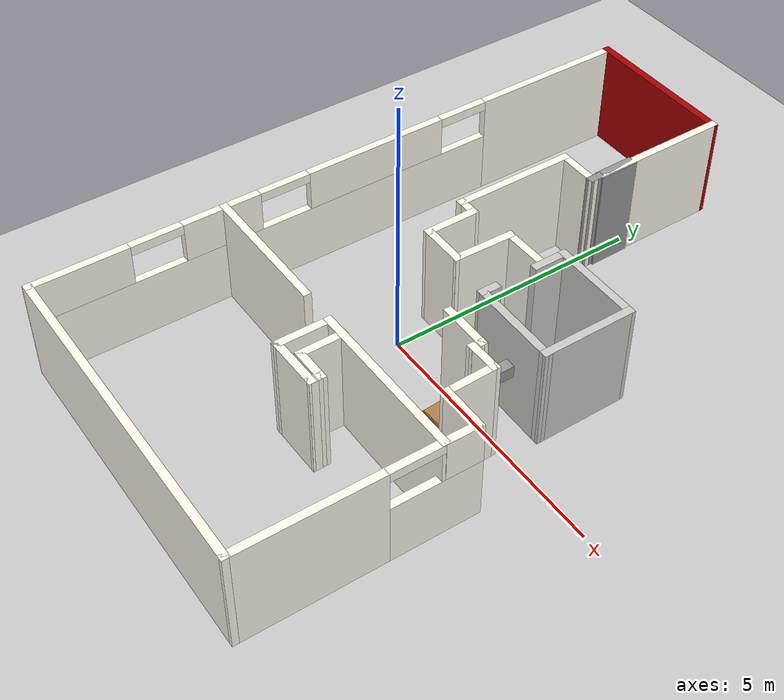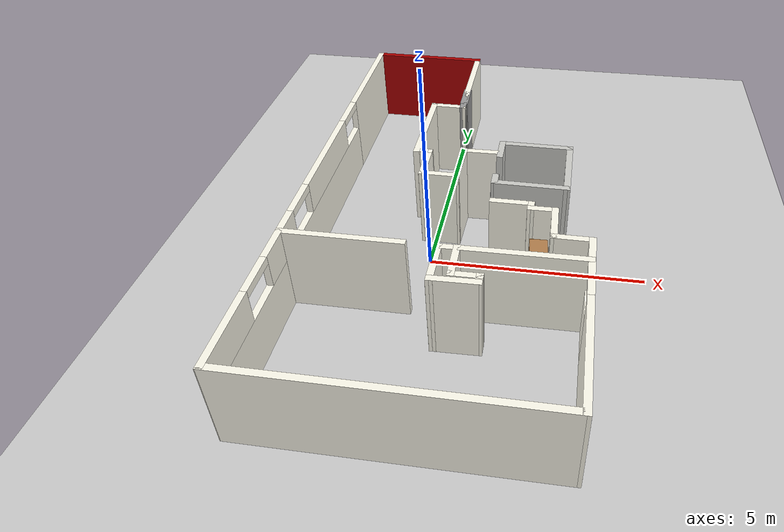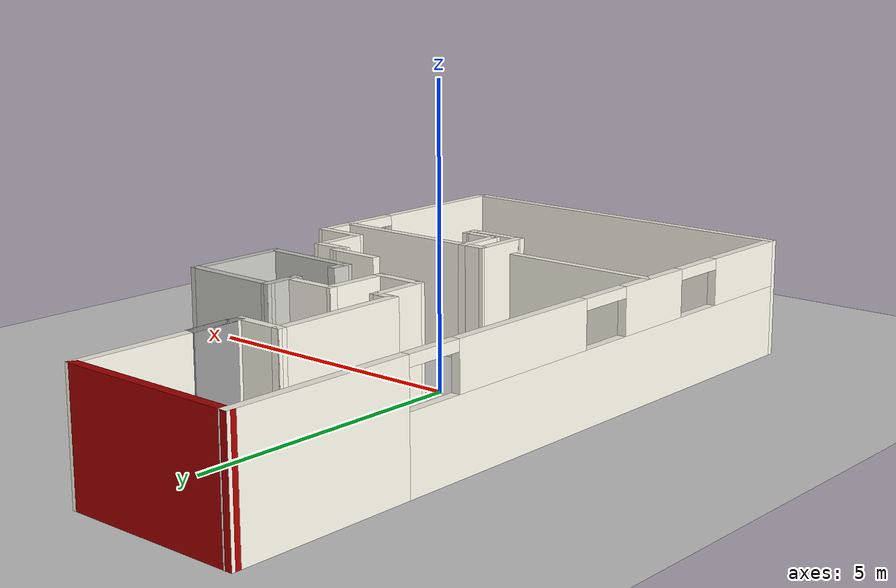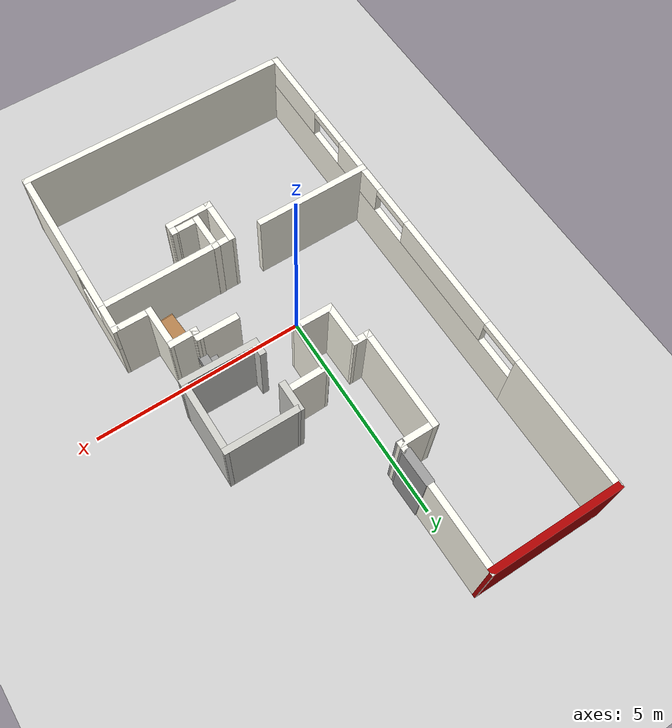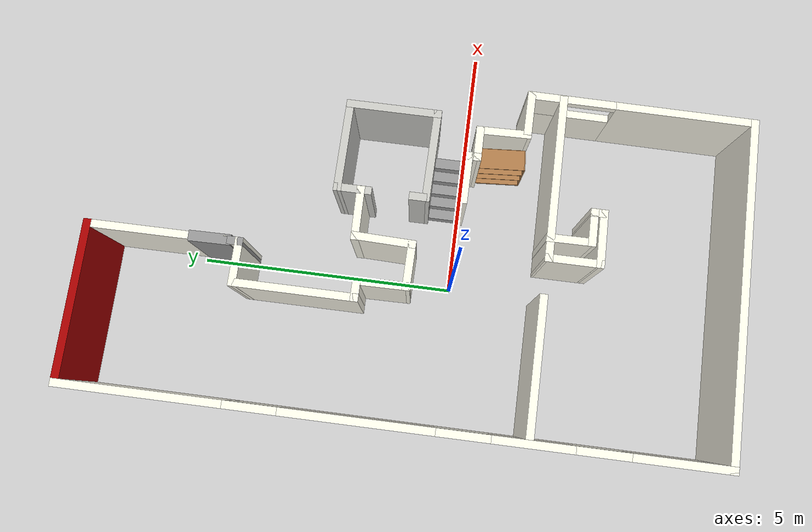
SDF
<sdf version="1.6">
 <world name="default">
  <model name="ground_plane">
   <static>1</static>
   <link name="link">
    <collision name="collision">
     <geometry><plane><normal>0 0 1</normal><size>100 100</size></plane></geometry>
     <surface>
      <contact><collide_bitmask>65535</collide_bitmask></contact>
      <friction><ode><mu>100</mu><mu2>50</mu2></ode></friction>
     </surface>
    </collision>
    <visual name="visual">
     <cast_shadows>0</cast_shadows>
     <geometry><plane><normal>0 0 1</normal><size>100 100</size></plane></geometry>
     <material>
      <script><uri>file://media/materials/scripts/gazebo.material</uri><name>Gazebo/Grey</name></script>
     </material>
    </visual>
   </link>
  </model>
  <model name="Apartment">
   <pose>0.435698 0.75844 0 0 -0 0</pose>
   <link name="Door_0">
    <collision name="Door_0_Collision">
     <geometry><box><size>0.792 0.2 2</size></box></geometry>
     <pose>0 0 1 0 -0 0</pose>
    </collision>
    <visual name="Door_0_Visual">
     <pose>0 0 1 0 -0 0</pose>
     <geometry><box><size>0.792 0.2 2</size></box></geometry>
     <material>
      <script><uri>file://media/materials/scripts/gazebo.material</uri><name>Gazebo/Grey</name></script>
     </material>
    </visual>
    <pose>-0.272982 3.76942 0 0 -0 1.58229</pose>
   </link>
   <link name="Stairs_1">
    <visual name="Stairs_1_Visual_0">
     <pose>1.08577 -0.451347 0.12 0 -0 1.5708</pose>
     <geometry><box><size>0.6 0.2 0.24</size></box></geometry>
     <material>
      <script><uri>file://media/materials/scripts/gazebo.material</uri><name>Gazebo/Grey</name></script>
      <ambient>1 1 1 1</ambient>
     </material>
     <meta><layer>0</layer></meta>
    </visual>
    <collision name="Stairs_1_Collision_0">
     <geometry><box><size>0.6 0.2 0.24</size></box></geometry>
     <pose>1.08577 -0.451347 0.12 0 -0 1.5708</pose>
    </collision>
    <visual name="Stairs_1_Visual_1">
     <pose>1.28577 -0.451347 0.36 0 -0 1.5708</pose>
     <geometry><box><size>0.6 0.2 0.24</size></box></geometry>
     <material>
      <script><uri>file://media/materials/scripts/gazebo.material</uri><name>Gazebo/Grey</name></script>
      <ambient>1 1 1 1</ambient>
     </material>
     <meta><layer>0</layer></meta>
    </visual>
    <collision name="Stairs_1_Collision_1">
     <geometry><box><size>0.6 0.2 0.24</size></box></geometry>
     <pose>1.28577 -0.451347 0.36 0 -0 1.5708</pose>
    </collision>
    <visual name="Stairs_1_Visual_2">
     <pose>1.48577 -0.451347 0.6 0 -0 1.5708</pose>
     <geometry><box><size>0.6 0.2 0.24</size></box></geometry>
     <material>
      <script><uri>file://media/materials/scripts/gazebo.material</uri><name>Gazebo/Grey</name></script>
      <ambient>1 1 1 1</ambient>
     </material>
     <meta><layer>0</layer></meta>
    </visual>
    <collision name="Stairs_1_Collision_2">
     <geometry><box><size>0.6 0.2 0.24</size></box></geometry>
     <pose>1.48577 -0.451347 0.6 0 -0 1.5708</pose>
    </collision>
    <visual name="Stairs_1_Visual_3">
     <pose>1.68577 -0.451347 0.84 0 -0 1.5708</pose>
     <geometry><box><size>0.6 0.2 0.24</size></box></geometry>
     <material>
      <script><uri>file://media/materials/scripts/gazebo.material</uri><name>Gazebo/Grey</name></script>
      <ambient>1 1 1 1</ambient>
     </material>
     <meta><layer>0</layer></meta>
    </visual>
    <collision name="Stairs_1_Collision_3">
     <geometry><box><size>0.6 0.2 0.24</size></box></geometry>
     <pose>1.68577 -0.451347 0.84 0 -0 1.5708</pose>
    </collision>
    <visual name="Stairs_1_Visual_4">
     <pose>1.88577 -0.451347 1.08 0 -0 1.5708</pose>
     <geometry><box><size>0.6 0.2 0.24</size></box></geometry>
     <material>
      <script><uri>file://media/materials/scripts/gazebo.material</uri><name>Gazebo/Grey</name></script>
      <ambient>1 1 1 1</ambient>
     </material>
     <meta><layer>0</layer></meta>
    </visual>
    <collision name="Stairs_1_Collision_4">
     <geometry><box><size>0.6 0.2 0.24</size></box></geometry>
     <pose>1.88577 -0.451347 1.08 0 -0 1.5708</pose>
    </collision>
   </link>
   <link name="Wall_0">
    <collision name="Wall_0_Collision">
     <geometry><box><size>2.97893 0.15 2</size></box></geometry>
     <pose>0 0 1 0 -0 0</pose>
    </collision>
    <visual name="Wall_0_Visual">
     <pose>0 0 1 0 -0 0</pose>
     <geometry><box><size>2.97893 0.15 2</size></box></geometry>
     <material>
      <script><uri>file://media/materials/scripts/gazebo.material</uri><name>Gazebo/Grey</name></script>
      <ambient>1 0.988235 0.929412 1</ambient>
     </material>
     <meta><layer>0</layer></meta>
    </visual>
    <pose>-0.276026 4.64956 0 0 -0 1.57256</pose>
   </link>
   <link name="Wall_1">
    <collision name="Wall_1_Collision">
     <geometry><box><size>3.08816 0.15 2</size></box></geometry>
     <pose>0 0 1 0 -0 0</pose>
    </collision>
    <visual name="Wall_1_Visual">
     <pose>0 0 1 0 -0 0</pose>
     <geometry><box><size>3.08816 0.15 2</size></box></geometry>
     <material>
      <script><uri>file://media/materials/scripts/gazebo.material</uri><name>Gazebo/Grey</name></script>
      <ambient>0.666667 0 0 1</ambient>
     </material>
     <meta><layer>0</layer></meta>
    </visual>
    <pose>-1.74753 6.07156 0 0 -0 3.13649</pose>
   </link>
   <link name="Wall_10">
    <collision name="Wall_10_Collision">
     <geometry><box><size>0.311078 0.15 2</size></box></geometry>
     <pose>0 0 1 0 -0 0</pose>
    </collision>
    <visual name="Wall_10_Visual">
     <pose>0 0 1 0 -0 0</pose>
     <geometry><box><size>0.311078 0.15 2</size></box></geometry>
     <material>
      <script><uri>file://media/materials/scripts/gazebo.material</uri><name>Gazebo/Grey</name></script>
      <ambient>1 0.988235 0.929412 1</ambient>
     </material>
     <meta><layer>0</layer></meta>
    </visual>
    <pose>1.87997 -0.868444 0 0 -0 1.53975</pose>
   </link>
   <link name="Wall_11">
    <collision name="Wall_11_Collision">
     <geometry><box><size>1 0.15 2</size></box></geometry>
     <pose>0 0 1 0 -0 0</pose>
    </collision>
    <visual name="Wall_11_Visual">
     <pose>0 0 1 0 -0 0</pose>
     <geometry><box><size>1 0.15 2</size></box></geometry>
     <material>
      <script><uri>file://media/materials/scripts/gazebo.material</uri><name>Gazebo/Grey</name></script>
      <ambient>1 0.988235 0.929412 1</ambient>
     </material>
     <meta><layer>0</layer></meta>
    </visual>
    <pose>1.45747 -0.784944 0 0 -0 3.13453</pose>
   </link>
   <link name="Wall_13">
    <collision name="Wall_13_Collision">
     <geometry><box><size>2.75 0.15 2</size></box></geometry>
     <pose>0 0 1 0 -0 0</pose>
    </collision>
    <visual name="Wall_13_Visual">
     <pose>0 0 1 0 -0 0</pose>
     <geometry><box><size>2.75 0.15 2</size></box></geometry>
     <material>
      <script><uri>file://media/materials/scripts/gazebo.material</uri><name>Gazebo/Grey</name></script>
      <ambient>1 0.988235 0.929412 1</ambient>
     </material>
     <meta><layer>0</layer></meta>
    </visual>
    <pose>-1.91153 -2.44094 0 0 -0 0</pose>
   </link>
   <link name="Wall_15">
    <collision name="Wall_15_Collision">
     <geometry><box><size>3.21378 0.15 2</size></box></geometry>
     <pose>0 0 1 0 -0 0</pose>
    </collision>
    <visual name="Wall_15_Visual">
     <pose>0 0 1 0 -0 0</pose>
     <geometry><box><size>3.21378 0.15 2</size></box></geometry>
     <material>
      <script><uri>file://media/materials/scripts/gazebo.material</uri><name>Gazebo/Grey</name></script>
      <ambient>1 0.988235 0.929412 1</ambient>
     </material>
     <meta><layer>0</layer></meta>
    </visual>
    <pose>1.67147 -2.45744 0 0 0 -3.138</pose>
   </link>
   <link name="Wall_16">
    <collision name="Wall_16_Collision">
     <geometry><box><size>1.1 0.15 2</size></box></geometry>
     <pose>0 0 1 0 -0 0</pose>
    </collision>
    <visual name="Wall_16_Visual">
     <pose>0 0 1 0 -0 0</pose>
     <geometry><box><size>1.1 0.15 2</size></box></geometry>
     <material>
      <script><uri>file://media/materials/scripts/gazebo.material</uri><name>Gazebo/Grey</name></script>
      <ambient>1 0.988235 0.929412 1</ambient>
     </material>
     <meta><layer>0</layer></meta>
    </visual>
    <pose>0.139474 -2.93794 0 0 0 -1.5708</pose>
   </link>
   <link name="Wall_17">
    <collision name="Wall_17_Collision">
     <geometry><box><size>1.1012 0.15 2</size></box></geometry>
     <pose>0 0 1 0 -0 0</pose>
    </collision>
    <visual name="Wall_17_Visual">
     <pose>0 0 1 0 -0 0</pose>
     <geometry><box><size>1.1012 0.15 2</size></box></geometry>
     <material>
      <script><uri>file://media/materials/scripts/gazebo.material</uri><name>Gazebo/Grey</name></script>
      <ambient>1 0.988235 0.929412 1</ambient>
     </material>
     <meta><layer>0</layer></meta>
    </visual>
    <pose>0.615474 -3.40644 0 0 -0 0.013655</pose>
   </link>
   <link name="Wall_18">
    <collision name="Wall_18_Collision">
     <geometry><box><size>0.32365 0.15 2</size></box></geometry>
     <pose>0 0 1 0 -0 0</pose>
    </collision>
    <visual name="Wall_18_Visual">
     <pose>0 0 1 0 -0 0</pose>
     <geometry><box><size>0.32365 0.15 2</size></box></geometry>
     <material>
      <script><uri>file://media/materials/scripts/gazebo.material</uri><name>Gazebo/Grey</name></script>
      <ambient>1 0.988235 0.929412 1</ambient>
     </material>
     <meta><layer>0</layer></meta>
    </visual>
    <pose>1.09147 -3.31294 0 0 -0 1.5708</pose>
   </link>
   <link name="Wall_19">
    <collision name="Wall_19_Collision">
     <geometry><box><size>0.719 0.15 2</size></box></geometry>
     <pose>0 0 1 0 -0 0</pose>
    </collision>
    <visual name="Wall_19_Visual">
     <pose>0 0 1 0 -0 0</pose>
     <geometry><box><size>0.719 0.15 2</size></box></geometry>
     <material>
      <script><uri>file://media/materials/scripts/gazebo.material</uri><name>Gazebo/Grey</name></script>
      <ambient>1 0.988235 0.929412 1</ambient>
     </material>
     <meta><layer>0</layer></meta>
    </visual>
    <pose>0.806974 -3.22744 0 0 0 -3.13632</pose>
   </link>
   <link name="Wall_2">
    <pose>-3.21653 0.012056 0 0 0 -1.5708</pose>
    <visual name="Wall_2_Visual_0">
     <pose>-4.59104 0 1 0 -0 0</pose>
     <geometry><box><size>3.10147 0.15 2</size></box></geometry>
     <material>
      <script><uri>file://media/materials/scripts/gazebo.material</uri><name>Gazebo/Grey</name></script>
      <ambient>1 0.988235 0.929412 1</ambient>
     </material>
     <meta><layer>0</layer></meta>
    </visual>
    <collision name="Wall_2_Collision_0">
     <geometry><box><size>3.10147 0.15 2</size></box></geometry>
     <pose>-4.59104 0 1 0 -0 0</pose>
    </collision>
    <visual name="Wall_2_Visual_1">
     <pose>1.55073 0 0.6095 0 -0 0</pose>
     <geometry><box><size>9.18207 0.15 1.219</size></box></geometry>
     <material>
      <script><uri>file://media/materials/scripts/gazebo.material</uri><name>Gazebo/Grey</name></script>
      <ambient>1 0.988235 0.929412 1</ambient>
     </material>
     <meta><layer>0</layer></meta>
    </visual>
    <collision name="Wall_2_Collision_1">
     <geometry><box><size>9.18207 0.15 1.219</size></box></geometry>
     <pose>1.55073 0 0.6095 0 -0 0</pose>
    </collision>
    <visual name="Wall_2_Visual_2">
     <pose>-0.630934 0 1.6095 0 -0 0</pose>
     <geometry><box><size>2.83873 0.15 0.781</size></box></geometry>
     <material>
      <script><uri>file://media/materials/scripts/gazebo.material</uri><name>Gazebo/Grey</name></script>
      <ambient>1 0.988235 0.929412 1</ambient>
     </material>
     <meta><layer>0</layer></meta>
    </visual>
    <collision name="Wall_2_Collision_2">
     <geometry><box><size>2.83873 0.15 0.781</size></box></geometry>
     <pose>-0.630934 0 1.6095 0 -0 0</pose>
    </collision>
    <visual name="Wall_2_Visual_3">
     <pose>2.53117 0 1.6095 0 -0 0</pose>
     <geometry><box><size>1.50548 0.15 0.781</size></box></geometry>
     <material>
      <script><uri>file://media/materials/scripts/gazebo.material</uri><name>Gazebo/Grey</name></script>
      <ambient>1 0.988235 0.929412 1</ambient>
     </material>
     <meta><layer>0</layer></meta>
    </visual>
    <collision name="Wall_2_Collision_3">
     <geometry><box><size>1.50548 0.15 0.781</size></box></geometry>
     <pose>2.53117 0 1.6095 0 -0 0</pose>
    </collision>
    <visual name="Wall_2_Visual_4">
     <pose>5.20784 0 1.6095 0 -0 0</pose>
     <geometry><box><size>1.86786 0.15 0.781</size></box></geometry>
     <material>
      <script><uri>file://media/materials/scripts/gazebo.material</uri><name>Gazebo/Grey</name></script>
      <ambient>1 0.988235 0.929412 1</ambient>
     </material>
     <meta><layer>0</layer></meta>
    </visual>
    <collision name="Wall_2_Collision_4">
     <geometry><box><size>1.86786 0.15 0.781</size></box></geometry>
     <pose>5.20784 0 1.6095 0 -0 0</pose>
    </collision>
    <visual name="Wall_2_Visual_5">
     <pose>-2.5453 0 1.9095 0 -0 0</pose>
     <geometry><box><size>0.99 0.15 0.181</size></box></geometry>
     <material>
      <script><uri>file://media/materials/scripts/gazebo.material</uri><name>Gazebo/Grey</name></script>
      <ambient>1 0.988235 0.929412 1</ambient>
     </material>
     <meta><layer>0</layer></meta>
    </visual>
    <collision name="Wall_2_Collision_5">
     <geometry><box><size>0.99 0.15 0.181</size></box></geometry>
     <pose>-2.5453 0 1.9095 0 -0 0</pose>
    </collision>
    <visual name="Wall_2_Visual_6">
     <pose>1.28343 0 1.9095 0 -0 0</pose>
     <geometry><box><size>0.99 0.15 0.181</size></box></geometry>
     <material>
      <script><uri>file://media/materials/scripts/gazebo.material</uri><name>Gazebo/Grey</name></script>
      <ambient>1 0.988235 0.929412 1</ambient>
     </material>
     <meta><layer>0</layer></meta>
    </visual>
    <collision name="Wall_2_Collision_6">
     <geometry><box><size>0.99 0.15 0.181</size></box></geometry>
     <pose>1.28343 0 1.9095 0 -0 0</pose>
    </collision>
    <visual name="Wall_2_Visual_7">
     <pose>3.77891 0 1.9095 0 -0 0</pose>
     <geometry><box><size>0.99 0.15 0.181</size></box></geometry>
     <material>
      <script><uri>file://media/materials/scripts/gazebo.material</uri><name>Gazebo/Grey</name></script>
      <ambient>1 0.988235 0.929412 1</ambient>
     </material>
     <meta><layer>0</layer></meta>
    </visual>
    <collision name="Wall_2_Collision_7">
     <geometry><box><size>0.99 0.15 0.181</size></box></geometry>
     <pose>3.77891 0 1.9095 0 -0 0</pose>
    </collision>
   </link>
   <link name="Wall_20">
    <collision name="Wall_20_Collision">
     <geometry><box><size>0.925382 0.15 2</size></box></geometry>
     <pose>0 0 1 0 -0 0</pose>
    </collision>
    <visual name="Wall_20_Visual">
     <pose>0 0 1 0 -0 0</pose>
     <geometry><box><size>0.925382 0.15 2</size></box></geometry>
     <material>
      <script><uri>file://media/materials/scripts/gazebo.material</uri><name>Gazebo/Grey</name></script>
      <ambient>1 0.988235 0.929412 1</ambient>
     </material>
     <meta><layer>0</layer></meta>
    </visual>
    <pose>0.519474 -2.84094 0 0 -0 1.57853</pose>
   </link>
   <link name="Wall_23">
    <collision name="Wall_23_Collision">
     <geometry><box><size>1.79124 0.15 2</size></box></geometry>
     <pose>0 0 1 0 -0 0</pose>
    </collision>
    <visual name="Wall_23_Visual">
     <pose>0 0 1 0 -0 0</pose>
     <geometry><box><size>1.79124 0.15 2</size></box></geometry>
     <material>
      <script><uri>file://media/materials/scripts/gazebo.material</uri><name>Gazebo/CeilingTiled</name></script>
      <ambient>1 1 1 1</ambient>
     </material>
     <meta><layer>0</layer></meta>
    </visual>
    <pose>1.79897 -0.097944 0 0 0 -0.015843</pose>
   </link>
   <link name="Wall_24">
    <collision name="Wall_24_Collision">
     <geometry><box><size>1.8195 0.15 2</size></box></geometry>
     <pose>0 0 1 0 -0 0</pose>
    </collision>
    <visual name="Wall_24_Visual">
     <pose>0 0 1 0 -0 0</pose>
     <geometry><box><size>1.8195 0.15 2</size></box></geometry>
     <material>
      <script><uri>file://media/materials/scripts/gazebo.material</uri><name>Gazebo/CeilingTiled</name></script>
      <ambient>1 1 1 1</ambient>
     </material>
     <meta><layer>0</layer></meta>
    </visual>
    <pose>2.61947 0.723556 0 0 -0 1.5708</pose>
   </link>
   <link name="Wall_25">
    <collision name="Wall_25_Collision">
     <geometry><box><size>1.79103 0.15 2</size></box></geometry>
     <pose>0 0 1 0 -0 0</pose>
    </collision>
    <visual name="Wall_25_Visual">
     <pose>0 0 1 0 -0 0</pose>
     <geometry><box><size>1.79103 0.15 2</size></box></geometry>
     <material>
      <script><uri>file://media/materials/scripts/gazebo.material</uri><name>Gazebo/CeilingTiled</name></script>
      <ambient>1 1 1 1</ambient>
     </material>
     <meta><layer>0</layer></meta>
    </visual>
    <pose>1.79897 1.56706 0 0 -0 3.13062</pose>
   </link>
   <link name="Wall_28">
    <collision name="Wall_28_Collision">
     <geometry><box><size>1.02916 0.15 2</size></box></geometry>
     <pose>0 0 1 0 -0 0</pose>
    </collision>
    <visual name="Wall_28_Visual">
     <pose>0 0 1 0 -0 0</pose>
     <geometry><box><size>1.02916 0.15 2</size></box></geometry>
     <material>
      <script><uri>file://media/materials/scripts/gazebo.material</uri><name>Gazebo/Grey</name></script>
      <ambient>1 0.988235 0.929412 1</ambient>
     </material>
     <meta><layer>0</layer></meta>
    </visual>
    <pose>0.535929 1.12956 0 0 0 -3.12908</pose>
   </link>
   <link name="Wall_30">
    <collision name="Wall_30_Collision">
     <geometry><box><size>1.21772 0.15 2</size></box></geometry>
     <pose>0 0 1 0 -0 0</pose>
    </collision>
    <visual name="Wall_30_Visual">
     <pose>0 0 1 0 -0 0</pose>
     <geometry><box><size>1.21772 0.15 2</size></box></geometry>
     <material>
      <script><uri>file://media/materials/scripts/gazebo.material</uri><name>Gazebo/Grey</name></script>
      <ambient>1 0.988235 0.929412 1</ambient>
     </material>
     <meta><layer>0</layer></meta>
    </visual>
    <pose>0.089183 0.590208 0 0 0 -1.5979</pose>
   </link>
   <link name="Wall_31">
    <collision name="Wall_31_Collision">
     <geometry><box><size>0.941296 0.15 2</size></box></geometry>
     <pose>0 0 1 0 -0 0</pose>
    </collision>
    <visual name="Wall_31_Visual">
     <pose>0 0 1 0 -0 0</pose>
     <geometry><box><size>0.941296 0.15 2</size></box></geometry>
     <material>
      <script><uri>file://media/materials/scripts/gazebo.material</uri><name>Gazebo/Grey</name></script>
      <ambient>1 0.988235 0.929412 1</ambient>
     </material>
     <meta><layer>0</layer></meta>
    </visual>
    <pose>-0.320908 0.061208 0 0 -0 3.12934</pose>
   </link>
   <link name="Wall_32">
    <collision name="Wall_32_Collision">
     <geometry><box><size>1.06103 0.15 2</size></box></geometry>
     <pose>0 0 1 0 -0 0</pose>
    </collision>
    <visual name="Wall_32_Visual">
     <pose>0 0 1 0 -0 0</pose>
     <geometry><box><size>1.06103 0.15 2</size></box></geometry>
     <material>
      <script><uri>file://media/materials/scripts/gazebo.material</uri><name>Gazebo/Grey</name></script>
      <ambient>1 0.988235 0.929412 1</ambient>
     </material>
     <meta><layer>0</layer></meta>
    </visual>
    <pose>-0.721026 0.521556 0 0 -0 1.58068</pose>
   </link>
   <link name="Wall_33">
    <collision name="Wall_33_Collision">
     <geometry><box><size>0.45987 0.15 2</size></box></geometry>
     <pose>0 0 1 0 -0 0</pose>
    </collision>
    <visual name="Wall_33_Visual">
     <pose>0 0 1 0 -0 0</pose>
     <geometry><box><size>0.45987 0.15 2</size></box></geometry>
     <material>
      <script><uri>file://media/materials/scripts/gazebo.material</uri><name>Gazebo/Grey</name></script>
      <ambient>1 0.988235 0.929412 1</ambient>
     </material>
     <meta><layer>0</layer></meta>
    </visual>
    <pose>-0.880526 0.977056 0 0 -0 3.14159</pose>
   </link>
   <link name="Wall_35">
    <collision name="Wall_35_Collision">
     <geometry><box><size>2.40185 0.15 2</size></box></geometry>
     <pose>0 0 1 0 -0 0</pose>
    </collision>
    <visual name="Wall_35_Visual">
     <pose>0 0 1 0 -0 0</pose>
     <geometry><box><size>2.40185 0.15 2</size></box></geometry>
     <material>
      <script><uri>file://media/materials/scripts/gazebo.material</uri><name>Gazebo/Grey</name></script>
      <ambient>1 0.988235 0.929412 1</ambient>
     </material>
     <meta><layer>0</layer></meta>
    </visual>
    <pose>-1.03553 2.10256 0 0 -0 1.5708</pose>
   </link>
   <link name="Wall_36">
    <collision name="Wall_36_Collision">
     <geometry><box><size>0.915215 0.15 2</size></box></geometry>
     <pose>0 0 1 0 -0 0</pose>
    </collision>
    <visual name="Wall_36_Visual">
     <pose>0 0 1 0 -0 0</pose>
     <geometry><box><size>0.915215 0.15 2</size></box></geometry>
     <material>
      <script><uri>file://media/materials/scripts/gazebo.material</uri><name>Gazebo/Grey</name></script>
      <ambient>1 0.988235 0.929412 1</ambient>
     </material>
     <meta><layer>0</layer></meta>
    </visual>
    <pose>-0.653026 3.22506 0 0 0 -0.007843</pose>
   </link>
   <link name="Wall_37">
    <collision name="Wall_37_Collision">
     <geometry><box><size>0.301905 0.15 2</size></box></geometry>
     <pose>0 0 1 0 -0 0</pose>
    </collision>
    <visual name="Wall_37_Visual">
     <pose>0 0 1 0 -0 0</pose>
     <geometry><box><size>0.301905 0.15 2</size></box></geometry>
     <material>
      <script><uri>file://media/materials/scripts/gazebo.material</uri><name>Gazebo/Grey</name></script>
      <ambient>1 1 1 1</ambient>
     </material>
     <meta><layer>0</layer></meta>
    </visual>
    <pose>-0.270526 3.29806 0 0 -0 1.5708</pose>
   </link>
   <link name="Wall_4">
    <collision name="Wall_4_Collision">
     <geometry><box><size>6.55531 0.15 2</size></box></geometry>
     <pose>0 0 1 0 -0 0</pose>
    </collision>
    <visual name="Wall_4_Visual">
     <pose>0 0 1 0 -0 0</pose>
     <geometry><box><size>6.55531 0.15 2</size></box></geometry>
     <material>
      <script><uri>file://media/materials/scripts/gazebo.material</uri><name>Gazebo/Grey</name></script>
      <ambient>1 0.988235 0.929412 1</ambient>
     </material>
     <meta><layer>0</layer></meta>
    </visual>
    <pose>-0.014026 -6.06694 0 0 0 -0.003747</pose>
   </link>
   <link name="Wall_42">
    <pose>0.978474 0.745556 0 0 0 -1.5708</pose>
    <visual name="Wall_42_Visual_0">
     <pose>-0.544709 0 1 0 -0 0</pose>
     <geometry><box><size>0.721287 0.15 2</size></box></geometry>
     <material>
      <script><uri>file://media/materials/scripts/gazebo.material</uri><name>Gazebo/CeilingTiled</name></script>
      <ambient>1 1 1 1</ambient>
     </material>
     <meta><layer>0</layer></meta>
    </visual>
    <collision name="Wall_42_Collision_0">
     <geometry><box><size>0.721287 0.15 2</size></box></geometry>
     <pose>-0.544709 0 1 0 -0 0</pose>
    </collision>
    <visual name="Wall_42_Visual_1">
     <pose>0.710643 0 1 0 -0 0</pose>
     <geometry><box><size>0.389419 0.15 2</size></box></geometry>
     <material>
      <script><uri>file://media/materials/scripts/gazebo.material</uri><name>Gazebo/CeilingTiled</name></script>
      <ambient>1 1 1 1</ambient>
     </material>
     <meta><layer>0</layer></meta>
    </visual>
    <collision name="Wall_42_Collision_1">
     <geometry><box><size>0.389419 0.15 2</size></box></geometry>
     <pose>0.710643 0 1 0 -0 0</pose>
    </collision>
   </link>
   <link name="Wall_5">
    <pose>3.20247 -3.96044 0 0 -0 1.56419</pose>
    <visual name="Wall_5_Visual_0">
     <pose>-0.841786 0 1 0 -0 0</pose>
     <geometry><box><size>2.70352 0.15 2</size></box></geometry>
     <material>
      <script><uri>file://media/materials/scripts/gazebo.material</uri><name>Gazebo/Grey</name></script>
      <ambient>1 0.988235 0.929412 1</ambient>
     </material>
     <meta><layer>0</layer></meta>
    </visual>
    <collision name="Wall_5_Collision_0">
     <geometry><box><size>2.70352 0.15 2</size></box></geometry>
     <pose>-0.841786 0 1 0 -0 0</pose>
    </collision>
    <visual name="Wall_5_Visual_1">
     <pose>1.35176 0 0.6095 0 -0 0</pose>
     <geometry><box><size>1.68357 0.15 1.219</size></box></geometry>
     <material>
      <script><uri>file://media/materials/scripts/gazebo.material</uri><name>Gazebo/Grey</name></script>
      <ambient>1 0.988235 0.929412 1</ambient>
     </material>
     <meta><layer>0</layer></meta>
    </visual>
    <collision name="Wall_5_Collision_1">
     <geometry><box><size>1.68357 0.15 1.219</size></box></geometry>
     <pose>1.35176 0 0.6095 0 -0 0</pose>
    </collision>
    <visual name="Wall_5_Visual_2">
     <pose>1.84676 0 1.6095 0 -0 0</pose>
     <geometry><box><size>0.693573 0.15 0.781</size></box></geometry>
     <material>
      <script><uri>file://media/materials/scripts/gazebo.material</uri><name>Gazebo/Grey</name></script>
      <ambient>1 0.988235 0.929412 1</ambient>
     </material>
     <meta><layer>0</layer></meta>
    </visual>
    <collision name="Wall_5_Collision_2">
     <geometry><box><size>0.693573 0.15 0.781</size></box></geometry>
     <pose>1.84676 0 1.6095 0 -0 0</pose>
    </collision>
    <visual name="Wall_5_Visual_3">
     <pose>1.00497 0 1.9095 0 -0 0</pose>
     <geometry><box><size>0.99 0.15 0.181</size></box></geometry>
     <material>
      <script><uri>file://media/materials/scripts/gazebo.material</uri><name>Gazebo/Grey</name></script>
      <ambient>1 0.988235 0.929412 1</ambient>
     </material>
     <meta><layer>0</layer></meta>
    </visual>
    <collision name="Wall_5_Collision_3">
     <geometry><box><size>0.99 0.15 0.181</size></box></geometry>
     <pose>1.00497 0 1.9095 0 -0 0</pose>
    </collision>
   </link>
   <link name="Wall_7">
    <collision name="Wall_7_Collision">
     <geometry><box><size>0.940612 0.15 2</size></box></geometry>
     <pose>0 0 1 0 -0 0</pose>
    </collision>
    <visual name="Wall_7_Visual">
     <pose>0 0 1 0 -0 0</pose>
     <geometry><box><size>0.940612 0.15 2</size></box></geometry>
     <material>
      <script><uri>file://media/materials/scripts/gazebo.material</uri><name>Gazebo/Grey</name></script>
      <ambient>1 0.988235 0.929412 1</ambient>
     </material>
     <meta><layer>0</layer></meta>
    </visual>
    <pose>2.82097 -1.83894 0 0 -0 3.13401</pose>
   </link>
   <link name="Wall_8">
    <collision name="Wall_8_Collision">
     <geometry><box><size>1.04134 0.15 2</size></box></geometry>
     <pose>0 0 1 0 -0 0</pose>
    </collision>
    <visual name="Wall_8_Visual">
     <pose>0 0 1 0 -0 0</pose>
     <geometry><box><size>1.04134 0.15 2</size></box></geometry>
     <material>
      <script><uri>file://media/materials/scripts/gazebo.material</uri><name>Gazebo/Grey</name></script>
      <ambient>1 0.988235 0.929412 1</ambient>
     </material>
     <meta><layer>0</layer></meta>
    </visual>
    <pose>2.41547 -1.39044 0 0 -0 1.59324</pose>
   </link>
   <link name="Wall_9">
    <collision name="Wall_9_Collision">
     <geometry><box><size>0.678216 0.15 2</size></box></geometry>
     <pose>0 0 1 0 -0 0</pose>
    </collision>
    <visual name="Wall_9_Visual">
     <pose>0 0 1 0 -0 0</pose>
     <geometry><box><size>0.678216 0.15 2</size></box></geometry>
     <material>
      <script><uri>file://media/materials/scripts/gazebo.material</uri><name>Gazebo/Grey</name></script>
      <ambient>1 0.988235 0.929412 1</ambient>
     </material>
     <meta><layer>0</layer></meta>
    </visual>
    <pose>2.14147 -0.946944 0 0 0 -3.13402</pose>
   </link>
   <static>1</static>
  </model>
  <model name="bookshelf_2">
   <static>1</static>
   <link name="link">
    <inertial><mass>1</mass></inertial>
    <collision name="back">
     <pose>0 0.005 0.6 0 -0 0</pose>
     <geometry><box><size>0.9 0.01 1.2</size></box></geometry>
    </collision>
    <visual name="visual1">
     <pose>0 0.005 0.6 0 -0 0</pose>
     <geometry><box><size>0.9 0.01 1.2</size></box></geometry>
     <material>
      <script><uri>file://media/materials/scripts/gazebo.material</uri><name>Gazebo/Wood</name></script>
     </material>
    </visual>
    <collision name="left_side">
     <pose>0.45 -0.195 0.6 0 -0 0</pose>
     <geometry><box><size>0.02 0.4 1.2</size></box></geometry>
    </collision>
    <visual name="visual2">
     <pose>0.45 -0.195 0.6 0 -0 0</pose>
     <geometry><box><size>0.02 0.4 1.2</size></box></geometry>
     <material>
      <script><uri>file://media/materials/scripts/gazebo.material</uri><name>Gazebo/Wood</name></script>
     </material>
    </visual>
    <collision name="right_side">
     <pose>-0.45 -0.195 0.6 0 -0 0</pose>
     <geometry><box><size>0.02 0.4 1.2</size></box></geometry>
    </collision>
    <visual name="visual3">
     <pose>-0.45 -0.195 0.6 0 -0 0</pose>
     <geometry><box><size>0.02 0.4 1.2</size></box></geometry>
     <material>
      <script><uri>file://media/materials/scripts/gazebo.material</uri><name>Gazebo/Wood</name></script>
     </material>
    </visual>
    <collision name="bottom">
     <pose>0 -0.195 0.03 0 -0 0</pose>
     <geometry><box><size>0.88 0.4 0.06</size></box></geometry>
    </collision>
    <visual name="visual4">
     <pose>0 -0.195 0.03 0 -0 0</pose>
     <geometry><box><size>0.88 0.4 0.06</size></box></geometry>
     <material>
      <script><uri>file://media/materials/scripts/gazebo.material</uri><name>Gazebo/Wood</name></script>
     </material>
    </visual>
    <collision name="top">
     <pose>0 -0.195 1.19 0 -0 0</pose>
     <geometry><box><size>0.88 0.4 0.02</size></box></geometry>
    </collision>
    <visual name="visual5">
     <pose>0 -0.195 1.19 0 -0 0</pose>
     <geometry><box><size>0.88 0.4 0.02</size></box></geometry>
     <material>
      <script><uri>file://media/materials/scripts/gazebo.material</uri><name>Gazebo/Wood</name></script>
     </material>
    </visual>
    <collision name="low_shelf">
     <pose>0 -0.195 0.43 0 -0 0</pose>
     <geometry><box><size>0.88 0.4 0.02</size></box></geometry>
    </collision>
    <visual name="visual6">
     <pose>0 -0.195 0.43 0 -0 0</pose>
     <geometry><box><size>0.88 0.4 0.02</size></box></geometry>
     <material>
      <script><uri>file://media/materials/scripts/gazebo.material</uri><name>Gazebo/Wood</name></script>
     </material>
    </visual>
    <collision name="high_shelf">
     <pose>0 -0.195 0.8 0 -0 0</pose>
     <geometry><box><size>0.88 0.4 0.02</size></box></geometry>
    </collision>
    <visual name="visual7">
     <pose>0 -0.195 0.8 0 -0 0</pose>
     <geometry><box><size>0.88 0.4 0.02</size></box></geometry>
     <material>
      <script><uri>file://media/materials/scripts/gazebo.material</uri><name>Gazebo/Wood</name></script>
     </material>
    </visual>
   </link>
   <pose>2.75185 -0.692736 0 0 0 -1.50438</pose>
  </model>
 </world>
</sdf>
